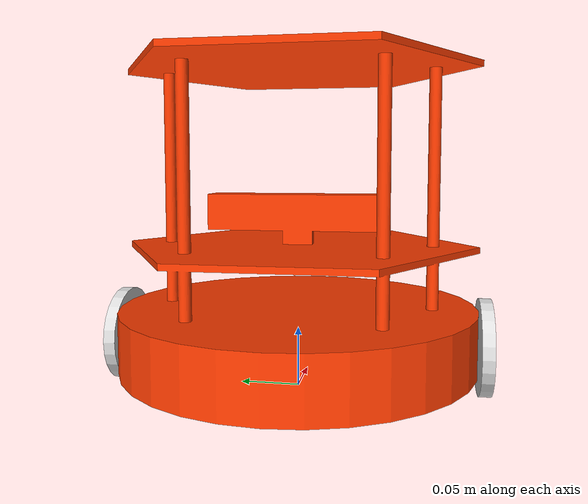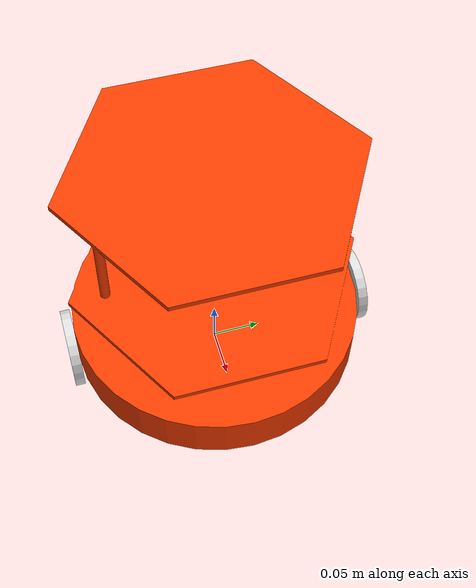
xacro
<?xml version="1.0"?>
<robot name="robot" xmlns:xacro="http://www.ros.org/wiki/xacro">

<!-- Colors -->

    <material name="Chrome">
        <color rgba="220 220 220 1" />
    </material>

    <material name="Orange">
        <color rgba="255 60 0 1" />
    </material>

<!-- Constants -->
    <xacro:property name="PI" value="3.1415"/>

    <xacro:property name="base_link_scale" value="0.5" />
    <xacro:property name="base_link_mass" value="0.5" />
    <xacro:property name="base_link_width" value="0.3" />
    <xacro:property name="wheel_radius" value="0.04" />
    <xacro:property name="wheel_width" value="0.01" />
    <xacro:property name="wheel_mass" value="0.1" />
<!-- Macros -->
    <xacro:macro name="base_link_inertia" params="mass">
        <inertial>
            <mass value="${mass}"/>
            <inertia ixx="1.0" ixy="0.0" ixz="0.0"
                     iyy="1.0" iyz="0.0"
                     izz="1.0"/>
        </inertial>
    </xacro:macro>

    <xacro:macro name="wheel_inertial" params="mass radius width">
        <inertial>
            <mass value="${mass}" />
            <inertia ixx="${mass*(3*radius*radius+width*width)/12}" ixy="0.0" ixz="0.0"
                    iyy="${mass*(3*radius*radius+width*width)/12}" iyz= "0.0"
                    izz="${mass*radius*radius/2}" />
        </inertial>
    </xacro:macro>

<!-- Base link -->
    <link name="base_link">
        <visual>
            <geometry>
                <mesh filename="package://miapr_projekt/robot_mesh.stl" scale="${base_link_scale} ${base_link_scale} ${base_link_scale}"/>
            </geometry>
            <material name="Orange"/>
        </visual>
        <collision>
            <geometry>
                <mesh filename="package://miapr_projekt/robot_mesh.stl" scale="${base_link_scale} ${base_link_scale} ${base_link_scale}"/>
            </geometry>
        </collision>
        <xacro:base_link_inertia mass = "2" />
    </link>

    <gazebo reference="base_link">
        <material>
            Gazebo/Orange
        </material>
        <turnGravityOff>false</turnGravityOff>
    </gazebo>

<!-- Wheels -->
    <xacro:macro name="wheel" params="side Y">
        <link name="${side}_wheel">
            <visual>
                <origin rpy="${PI/2} 0 0" xyz="0 0 0"/>
                <geometry>
                    <cylinder radius="${wheel_radius}" length="${wheel_width}"/>
                </geometry>
                <material name="Chrome"/>
            </visual>
            <collision>
                <origin rpy="${PI/2} 0 0" xyz="0 0 0"/>
                <geometry>
                    <cylinder radius="${wheel_radius}" length="${wheel_width}"/>
                </geometry>
            </collision>
            <xacro:wheel_inertial mass="0.1" radius="0.04" width="0.01"/>
        </link>
        <gazebo reference="${side}_wheel">
            <mu1 value="200.0"/>
            <mu2 value="100.0"/>
            <kp value="10000000.0"/>
            <kd value="1.0"/>
            <material>
                Gazebo/Chrome
            </material>
        </gazebo>

        <joint name="${side}_wheel_joint" type="continuous">
            <parent link="base_link" />
            <child link="${side}_wheel" />
            <origin xyz="0 ${(base_link_width+wheel_width)/2*Y} ${wheel_radius}" rpy="0 0 0"/>
            <axis xyz="0 1 0"/>
            <limit effort= "100" velocity="100"/>
            <dynamics damping="0.0" friction="0.0"/>
        </joint>

        <transmission name="${side}_wheel_trans">
            <type>transmission_interface/SimpleTransmission</type>
            <actuator name="${side}_wheel_motor">
                <hardwareInterface>
                    EffortJointInterface
                </hardwareInterface>
                <mechanicalReduction>
                    1
                </mechanicalReduction>
            </actuator>
            <joint name="${side}_wheel_joint">
                <hardwareInterface>
                    VelocityJointInterface
                </hardwareInterface>
            </joint>
        </transmission>

    </xacro:macro>

    <xacro:wheel side="left" Y="-1"/>
    <xacro:wheel side="right" Y="1"/>

<!-- ros_control plugin-->

    <gazebo>
        <plugin name="gazebo_ros_control" filename= "libgazebo_ros_control.so">
            <robotNamespace>
                /
            </robotNamespace>
        </plugin>
    </gazebo>
</robot>
